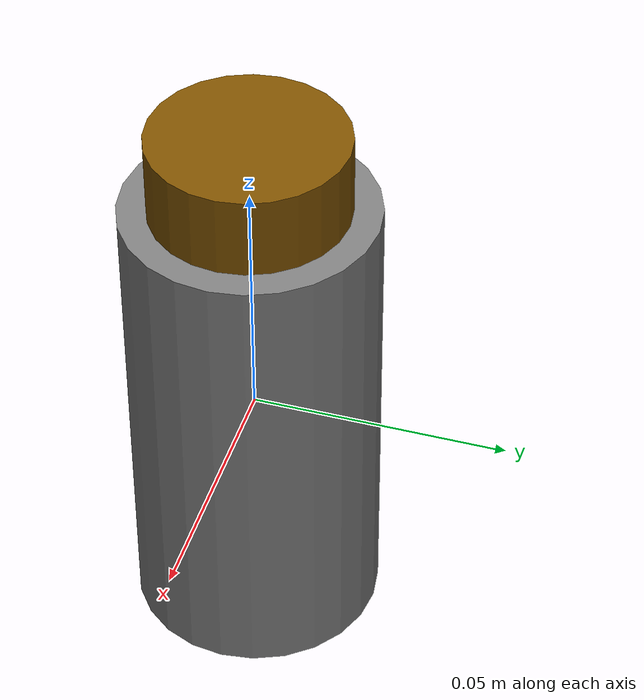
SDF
<?xml version="1.0" ?>
<sdf version="1.4">
    <model name='small_bottle'>
      <link name='link'>
        <inertial>
          <mass>0.05</mass>
          <inertia>
            <ixx>0.00058</ixx>
            <ixy>0</ixy>
            <ixz>0</ixz>
            <iyy>0.00058</iyy>
            <iyz>0</iyz>
            <izz>0.00016</izz>
          </inertia>
        </inertial>
        <visual name='top'>
          <pose>0 0 0.0555 0 0 0</pose>
          <geometry>
            <cylinder>
              <radius>0.019</radius>
              <length>0.016</length>
            </cylinder>
          </geometry>
          <material>
            <!-- color:orange -->
            <ambient>1 0.647 0 1</ambient>
            <diffuse>0.5 0.3235 0 1</diffuse>
            <specular>0.1 0.1 0.1 1</specular>
            <emissive>0 0 0 0</emissive>
          </material>
        </visual>
        <collision name='collision_top'>
          <pose>0 0 0.0555 0 0 0</pose>
          <geometry>
            <cylinder>
              <radius>0.019</radius>
              <length>0.016</length>
            </cylinder>
          </geometry>
          <max_contacts>10</max_contacts>
          <surface>
            <bounce>
              <restitution_coefficient>0.2</restitution_coefficient>
              <threshold>0</threshold>
            </bounce>
            <friction>
              <ode/>
            </friction>
            <contact>
              <ode>
                <kp>10000</kp>
                <max_vel>10</max_vel>
              </ode>
            </contact>
          </surface>
        </collision>
        <visual name='bottom'>
          <pose>0 0 0 0 0 0</pose>
          <geometry>
            <cylinder>
              <radius>0.0245</radius>
              <length>0.095</length>
            </cylinder>
          </geometry>
          <material>
            <!-- hsr_color/white -->
            <name>white</name>
            <ambient>1 1 1 1</ambient>
            <diffuse>0.5 0.5 0.5 1</diffuse>
            <specular>0 0 0 1</specular>
            <emissive>0 0 0 1</emissive>
            <shading>gouraud</shading>
            <receive_shadows>on</receive_shadows>
          </material>
        </visual>
        <collision name='collision_bottom'>
          <pose>0 0 0 0 0 0</pose>
          <geometry>
            <cylinder>
              <radius>0.0245</radius>
              <length>0.095</length>
            </cylinder>
          </geometry>
          <max_contacts>10</max_contacts>
          <surface>
            <bounce>
              <restitution_coefficient>0.2</restitution_coefficient>
              <threshold>0</threshold>
            </bounce>
            <friction>
              <ode/>
            </friction>
            <contact>
              <ode>
                <kp>100000</kp>
                <max_vel>10</max_vel>
              </ode>
            </contact>
          </surface>
        </collision>
        <velocity_decay>
          <linear>0</linear>
          <angular>0</angular>
        </velocity_decay>
        <self_collide>0</self_collide>
        <kinematic>0</kinematic>
        <gravity>1</gravity>
      </link>
      <static>0</static>
    </model>
</sdf>
